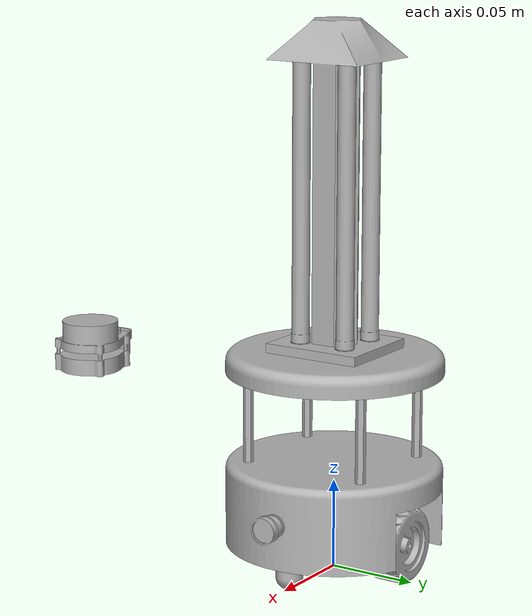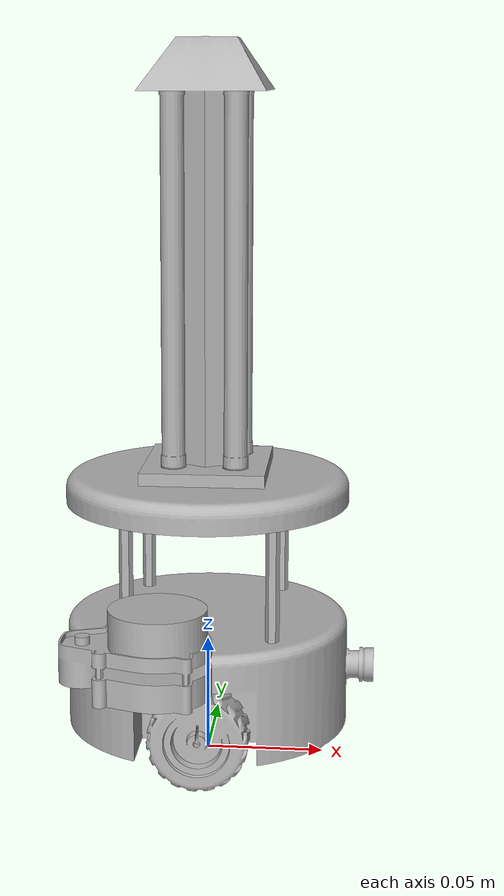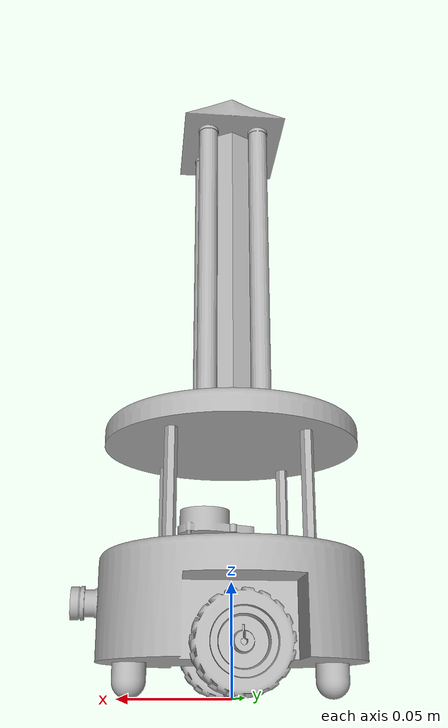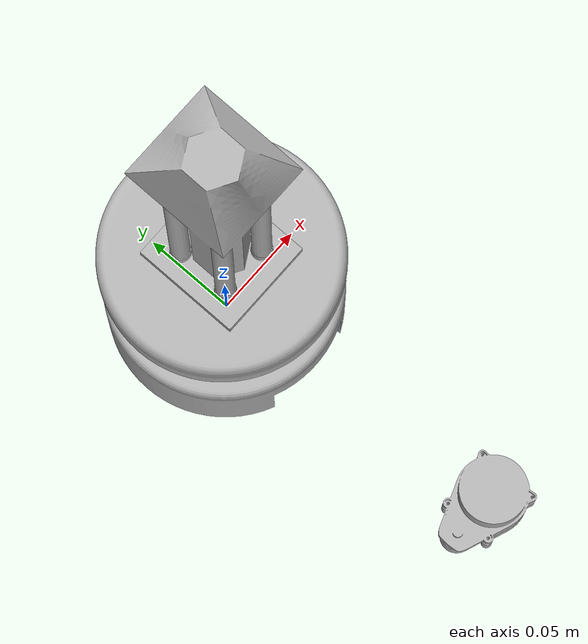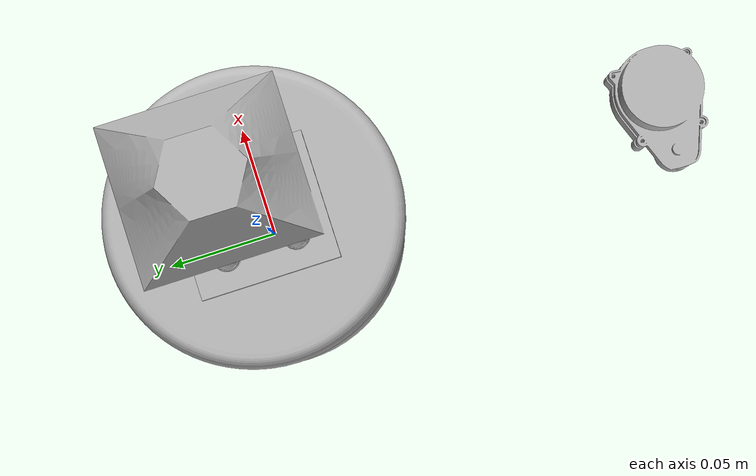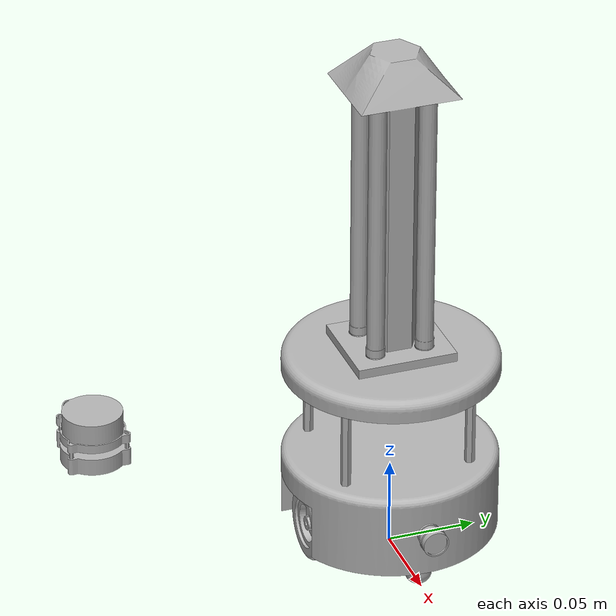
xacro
<?xml version="1.0" ?>
<robot name="robot_2" xmlns:xacro="http://www.ros.org/wiki/xacro">

<xacro:include filename="$(find robot_2_description)/urdf/materials.xacro" />
<xacro:include filename="$(find robot_2_description)/urdf/robot_2.trans" />
<xacro:include filename="$(find robot_2_description)/urdf/robot_2.gazebo" />
<link name="base_link">
  <inertial>
    <origin rpy="0 0 0" xyz="3.5816918795225934e-16 2.806643806252396e-15 0.03996501768187546"/>
    <mass value="0.5229463196400878"/>
    <inertia ixx="0.000449" ixy="0.0" ixz="-0.0" iyy="0.000644" iyz="0.0" izz="0.000894"/>
  </inertial>
  <visual>
    <origin rpy="0 0 0" xyz="0 0 0"/>
    <geometry>
      <mesh filename="package://robot_2_description/meshes/base_link.stl" scale="0.001 0.001 0.001"/>
    </geometry>
    <material name="silver"/>
  </visual>
  <collision>
    <origin rpy="0 0 0" xyz="0 0 0"/>
    <geometry>
      <mesh filename="package://robot_2_description/meshes/base_link.stl" scale="0.001 0.001 0.001"/>
    </geometry>
  </collision>
</link>

<link name="wheel1_1">
  <inertial>
    <origin rpy="0 0 0" xyz="1.3424177385424168e-09 -0.1663662605305044 -0.0010061415991715617"/>
    <mass value="0.135584559283875"/>
    <inertia ixx="2.1e-05" ixy="0.0" ixz="0.0" iyy="3.5e-05" iyz="-0.0" izz="2.1e-05"/>
  </inertial>
  <visual>
    <origin rpy="0 0 0" xyz="-0.0 -0.125 -0.022"/>
    <geometry>
      <mesh filename="package://robot_2_description/meshes/wheel1_1.stl" scale="0.001 0.001 0.001"/>
    </geometry>
    <material name="silver"/>
  </visual>
  <collision>
    <origin rpy="0 0 0" xyz="-0.0 -0.125 -0.022"/>
    <geometry>
      <mesh filename="package://robot_2_description/meshes/wheel1_1.stl" scale="0.001 0.001 0.001"/>
    </geometry>
  </collision>
</link>

<link name="wheel2_1">
  <inertial>
    <origin rpy="0 0 0" xyz="-4.338940176040751e-09 -0.17363375909041223 -0.0010061405085263903"/>
    <mass value="0.13558455928387872"/>
    <inertia ixx="2.1e-05" ixy="0.0" ixz="-0.0" iyy="3.5e-05" iyz="0.0" izz="2.1e-05"/>
  </inertial>
  <visual>
    <origin rpy="0 0 0" xyz="-0.0 -0.215 -0.022"/>
    <geometry>
      <mesh filename="package://robot_2_description/meshes/wheel2_1.stl" scale="0.001 0.001 0.001"/>
    </geometry>
    <material name="silver"/>
  </visual>
  <collision>
    <origin rpy="0 0 0" xyz="-0.0 -0.215 -0.022"/>
    <geometry>
      <mesh filename="package://robot_2_description/meshes/wheel2_1.stl" scale="0.001 0.001 0.001"/>
    </geometry>
  </collision>
</link>

<link name="LIDAR_1">
  <inertial>
    <origin rpy="0 0 0" xyz="-0.0041470497851640795 2.3270274596143282e-15 0.010100571111383835"/>
    <mass value="0.019437187157409802"/>
    <inertia ixx="2e-06" ixy="0.0" ixz="-1e-06" iyy="4e-06" iyz="0.0" izz="4e-06"/>
  </inertial>
  <visual>
    <origin rpy="0 0 0" xyz="-0.0 -0.0 -0.062"/>
    <geometry>
      <mesh filename="package://robot_2_description/meshes/LIDAR_1.stl" scale="0.001 0.001 0.001"/>
    </geometry>
    <material name="silver"/>
  </visual>
  <collision>
    <origin rpy="0 0 0" xyz="-0.0 -0.0 -0.062"/>
    <geometry>
      <mesh filename="package://robot_2_description/meshes/LIDAR_1.stl" scale="0.001 0.001 0.001"/>
    </geometry>
  </collision>
</link>

<link name="b_pill_3_1">
  <inertial>
    <origin rpy="0 0 0" xyz="0.030000000000000325 -0.20699999999999746 0.02399999999998806"/>
    <mass value="0.0084978742746349"/>
    <inertia ixx="2e-06" ixy="0.0" ixz="0.0" iyy="2e-06" iyz="-0.0" izz="0.0"/>
  </inertial>
  <visual>
    <origin rpy="0 0 0" xyz="-0.0 -0.17 -0.063"/>
    <geometry>
      <mesh filename="package://robot_2_description/meshes/b_pill_3_1.stl" scale="0.001 0.001 0.001"/>
    </geometry>
    <material name="silver"/>
  </visual>
  <collision>
    <origin rpy="0 0 0" xyz="-0.0 -0.17 -0.063"/>
    <geometry>
      <mesh filename="package://robot_2_description/meshes/b_pill_3_1.stl" scale="0.001 0.001 0.001"/>
    </geometry>
  </collision>
</link>

<link name="b_pill_4_1">
  <inertial>
    <origin rpy="0 0 0" xyz="-0.02999999999999966 -0.2069999999999975 0.023999999999987823"/>
    <mass value="0.0084978742746348"/>
    <inertia ixx="2e-06" ixy="-0.0" ixz="0.0" iyy="2e-06" iyz="-0.0" izz="0.0"/>
  </inertial>
  <visual>
    <origin rpy="0 0 0" xyz="-0.0 -0.17 -0.063"/>
    <geometry>
      <mesh filename="package://robot_2_description/meshes/b_pill_4_1.stl" scale="0.001 0.001 0.001"/>
    </geometry>
    <material name="silver"/>
  </visual>
  <collision>
    <origin rpy="0 0 0" xyz="-0.0 -0.17 -0.063"/>
    <geometry>
      <mesh filename="package://robot_2_description/meshes/b_pill_4_1.stl" scale="0.001 0.001 0.001"/>
    </geometry>
  </collision>
</link>

<link name="b_pill_2_1">
  <inertial>
    <origin rpy="0 0 0" xyz="-0.0299999999999996 -0.1349999999999973 0.023999999999987878"/>
    <mass value="0.008497874274634876"/>
    <inertia ixx="2e-06" ixy="0.0" ixz="0.0" iyy="2e-06" iyz="0.0" izz="0.0"/>
  </inertial>
  <visual>
    <origin rpy="0 0 0" xyz="-0.0 -0.17 -0.063"/>
    <geometry>
      <mesh filename="package://robot_2_description/meshes/b_pill_2_1.stl" scale="0.001 0.001 0.001"/>
    </geometry>
    <material name="silver"/>
  </visual>
  <collision>
    <origin rpy="0 0 0" xyz="-0.0 -0.17 -0.063"/>
    <geometry>
      <mesh filename="package://robot_2_description/meshes/b_pill_2_1.stl" scale="0.001 0.001 0.001"/>
    </geometry>
  </collision>
</link>

<link name="b_pill_1_1">
  <inertial>
    <origin rpy="0 0 0" xyz="0.030000000000000363 -0.13499999999999732 0.02399999999998781"/>
    <mass value="0.008497874274634809"/>
    <inertia ixx="2e-06" ixy="0.0" ixz="0.0" iyy="2e-06" iyz="0.0" izz="0.0"/>
  </inertial>
  <visual>
    <origin rpy="0 0 0" xyz="-0.0 -0.17 -0.063"/>
    <geometry>
      <mesh filename="package://robot_2_description/meshes/b_pill_1_1.stl" scale="0.001 0.001 0.001"/>
    </geometry>
    <material name="silver"/>
  </visual>
  <collision>
    <origin rpy="0 0 0" xyz="-0.0 -0.17 -0.063"/>
    <geometry>
      <mesh filename="package://robot_2_description/meshes/b_pill_1_1.stl" scale="0.001 0.001 0.001"/>
    </geometry>
  </collision>
</link>

<link name="lamp1_1">
  <inertial>
    <origin rpy="0 0 0" xyz="-1.0062974691374404e-08 1.3291860086715734e-07 0.0787499999999847"/>
    <mass value="0.0259798499932084"/>
    <inertia ixx="5.5e-05" ixy="0.0" ixz="-0.0" iyy="5.5e-05" iyz="0.0" izz="0.0"/>
  </inertial>
  <visual>
    <origin rpy="0 0 0" xyz="-0.012958 0.014121 -0.12925"/>
    <geometry>
      <mesh filename="package://robot_2_description/meshes/lamp1_1.stl" scale="0.001 0.001 0.001"/>
    </geometry>
    <material name="silver"/>
  </visual>
  <collision>
    <origin rpy="0 0 0" xyz="-0.012958 0.014121 -0.12925"/>
    <geometry>
      <mesh filename="package://robot_2_description/meshes/lamp1_1.stl" scale="0.001 0.001 0.001"/>
    </geometry>
  </collision>
</link>

<link name="lamp2_1">
  <inertial>
    <origin rpy="0 0 0" xyz="-1.006297849215354e-08 -1.3291858960706726e-07 0.07874999999998661"/>
    <mass value="0.02597984999320835"/>
    <inertia ixx="5.5e-05" ixy="0.0" ixz="-0.0" iyy="5.5e-05" iyz="-0.0" izz="0.0"/>
  </inertial>
  <visual>
    <origin rpy="0 0 0" xyz="-0.012958 -0.014121 -0.12925"/>
    <geometry>
      <mesh filename="package://robot_2_description/meshes/lamp2_1.stl" scale="0.001 0.001 0.001"/>
    </geometry>
    <material name="silver"/>
  </visual>
  <collision>
    <origin rpy="0 0 0" xyz="-0.012958 -0.014121 -0.12925"/>
    <geometry>
      <mesh filename="package://robot_2_description/meshes/lamp2_1.stl" scale="0.001 0.001 0.001"/>
    </geometry>
  </collision>
</link>

<link name="lamp3_1">
  <inertial>
    <origin rpy="0 0 0" xyz="1.0062992399431647e-08 1.3291856097025212e-07 0.07874999999998694"/>
    <mass value="0.025979849993208425"/>
    <inertia ixx="5.5e-05" ixy="0.0" ixz="-0.0" iyy="5.5e-05" iyz="0.0" izz="0.0"/>
  </inertial>
  <visual>
    <origin rpy="0 0 0" xyz="0.012958 0.014121 -0.12925"/>
    <geometry>
      <mesh filename="package://robot_2_description/meshes/lamp3_1.stl" scale="0.001 0.001 0.001"/>
    </geometry>
    <material name="silver"/>
  </visual>
  <collision>
    <origin rpy="0 0 0" xyz="0.012958 0.014121 -0.12925"/>
    <geometry>
      <mesh filename="package://robot_2_description/meshes/lamp3_1.stl" scale="0.001 0.001 0.001"/>
    </geometry>
  </collision>
</link>

<link name="lamp4_1">
  <inertial>
    <origin rpy="0 0 0" xyz="1.0063024193443515e-08 -1.329185752522305e-07 0.07874999999998822"/>
    <mass value="0.02597984999320818"/>
    <inertia ixx="5.5e-05" ixy="0.0" ixz="-0.0" iyy="5.5e-05" iyz="0.0" izz="0.0"/>
  </inertial>
  <visual>
    <origin rpy="0 0 0" xyz="0.012958 -0.014121 -0.12925"/>
    <geometry>
      <mesh filename="package://robot_2_description/meshes/lamp4_1.stl" scale="0.001 0.001 0.001"/>
    </geometry>
    <material name="silver"/>
  </visual>
  <collision>
    <origin rpy="0 0 0" xyz="0.012958 -0.014121 -0.12925"/>
    <geometry>
      <mesh filename="package://robot_2_description/meshes/lamp4_1.stl" scale="0.001 0.001 0.001"/>
    </geometry>
  </collision>
</link>

<link name="disk_top__1">
  <inertial>
    <origin rpy="0 0 0" xyz="0.025000000000000418 -0.20499999999999707 -0.1500804748457522"/>
    <mass value="0.15857278135894948"/>
    <inertia ixx="0.000142" ixy="0.0" ixz="0.0" iyy="0.000142" iyz="0.0" izz="0.000281"/>
  </inertial>
  <visual>
    <origin rpy="0 0 0" xyz="0.025 -0.205 -0.268"/>
    <geometry>
      <mesh filename="package://robot_2_description/meshes/disk_top__1.stl" scale="0.001 0.001 0.001"/>
    </geometry>
    <material name="silver"/>
  </visual>
  <collision>
    <origin rpy="0 0 0" xyz="0.025 -0.205 -0.268"/>
    <geometry>
      <mesh filename="package://robot_2_description/meshes/disk_top__1.stl" scale="0.001 0.001 0.001"/>
    </geometry>
  </collision>
</link>

<link name="top_struct_1">
  <inertial>
    <origin rpy="0 0 0" xyz="0.00018784276623245777 -6.746205231994651e-05 0.10535186097086743"/>
    <mass value="0.08818461557759205"/>
    <inertia ixx="0.000415" ixy="0.0" ixz="-0.0" iyy="0.000413" iyz="0.0" izz="2.5e-05"/>
  </inertial>
  <visual>
    <origin rpy="0 0 0" xyz="-0.0 -0.0 -0.124"/>
    <geometry>
      <mesh filename="package://robot_2_description/meshes/top_struct_1.stl" scale="0.001 0.001 0.001"/>
    </geometry>
    <material name="silver"/>
  </visual>
  <collision>
    <origin rpy="0 0 0" xyz="-0.0 -0.0 -0.124"/>
    <geometry>
      <mesh filename="package://robot_2_description/meshes/top_struct_1.stl" scale="0.001 0.001 0.001"/>
    </geometry>
  </collision>
</link>

<link name="Camera_1">
  <inertial>
    <origin rpy="0 0 0" xyz="0.06506608163852702 -0.19999999998975446 0.02400000001712703"/>
    <mass value="0.013116237909885132"/>
    <inertia ixx="0.0" ixy="0.0" ixz="-0.0" iyy="0.0" iyz="-0.0" izz="0.0"/>
  </inertial>
  <visual>
    <origin rpy="0 0 0" xyz="-0.0 -0.2 -0.016"/>
    <geometry>
      <mesh filename="package://robot_2_description/meshes/Camera_1.stl" scale="0.001 0.001 0.001"/>
    </geometry>
    <material name="silver"/>
  </visual>
  <collision>
    <origin rpy="0 0 0" xyz="-0.0 -0.2 -0.016"/>
    <geometry>
      <mesh filename="package://robot_2_description/meshes/Camera_1.stl" scale="0.001 0.001 0.001"/>
    </geometry>
  </collision>
</link>

<link name="Component6_1">
  <inertial>
    <origin rpy="0 0 0" xyz="0.04499999999952983 -0.16999999999999713 -0.0073750000000120264"/>
    <mass value="0.017340118826259073"/>
    <inertia ixx="0.0" ixy="0.0" ixz="0.0" iyy="0.0" iyz="0.0" izz="0.0"/>
  </inertial>
  <visual>
    <origin rpy="0 0 0" xyz="-0.0 -0.17 -0.016"/>
    <geometry>
      <mesh filename="package://robot_2_description/meshes/Component6_1.stl" scale="0.001 0.001 0.001"/>
    </geometry>
    <material name="silver"/>
  </visual>
  <collision>
    <origin rpy="0 0 0" xyz="-0.0 -0.17 -0.016"/>
    <geometry>
      <mesh filename="package://robot_2_description/meshes/Component6_1.stl" scale="0.001 0.001 0.001"/>
    </geometry>
  </collision>
</link>

<link name="Component16_1">
  <inertial>
    <origin rpy="0 0 0" xyz="-0.045000000000470136 -0.169999999999997 -0.00737500000001204"/>
    <mass value="0.017340118826259084"/>
    <inertia ixx="0.0" ixy="-0.0" ixz="0.0" iyy="0.0" iyz="0.0" izz="0.0"/>
  </inertial>
  <visual>
    <origin rpy="0 0 0" xyz="-0.0 -0.17 -0.016"/>
    <geometry>
      <mesh filename="package://robot_2_description/meshes/Component16_1.stl" scale="0.001 0.001 0.001"/>
    </geometry>
    <material name="silver"/>
  </visual>
  <collision>
    <origin rpy="0 0 0" xyz="-0.0 -0.17 -0.016"/>
    <geometry>
      <mesh filename="package://robot_2_description/meshes/Component16_1.stl" scale="0.001 0.001 0.001"/>
    </geometry>
  </collision>
</link>

<joint name="wheel_joint_1" type="continuous">
  <origin rpy="0 0 0" xyz="0.0 0.125 0.022"/>
  <parent link="base_link"/>
  <child link="wheel1_1"/>
  <axis xyz="-0.0 1.0 0.0"/>
</joint>

<joint name="wheel_joint_2" type="continuous">
  <origin rpy="0 0 0" xyz="0.0 0.215 0.022"/>
  <parent link="base_link"/>
  <child link="wheel2_1"/>
  <axis xyz="0.0 1.0 -0.0"/>
</joint>

<joint name="LIDAR_joint" type="fixed">
  <origin rpy="0 0 0" xyz="0.0 0.0 0.062"/>
  <parent link="base_link"/>
  <child link="LIDAR_1"/>
</joint>

<joint name="b_pill_joint_3" type="fixed">
  <origin rpy="0 0 0" xyz="0.0 0.17 0.063"/>
  <parent link="base_link"/>
  <child link="b_pill_3_1"/>
</joint>

<joint name="b_pill_joint_4" type="fixed">
  <origin rpy="0 0 0" xyz="0.0 0.17 0.063"/>
  <parent link="base_link"/>
  <child link="b_pill_4_1"/>
</joint>

<joint name="b_pill_joint_2" type="fixed">
  <origin rpy="0 0 0" xyz="0.0 0.17 0.063"/>
  <parent link="base_link"/>
  <child link="b_pill_2_1"/>
</joint>

<joint name="b_pill_joint_1" type="fixed">
  <origin rpy="0 0 0" xyz="0.0 0.17 0.063"/>
  <parent link="base_link"/>
  <child link="b_pill_1_1"/>
</joint>

<joint name="lamp_joint_1" type="fixed">
  <origin rpy="0 0 0" xyz="0.012958 -0.014121 0.00525"/>
  <parent link="top_struct_1"/>
  <child link="lamp1_1"/>
</joint>

<joint name="lamp_joint_2" type="fixed">
  <origin rpy="0 0 0" xyz="0.012958 0.014121 0.00525"/>
  <parent link="top_struct_1"/>
  <child link="lamp2_1"/>
</joint>

<joint name="lamp_joint_3" type="fixed">
  <origin rpy="0 0 0" xyz="-0.012958 -0.014121 0.00525"/>
  <parent link="top_struct_1"/>
  <child link="lamp3_1"/>
</joint>

<joint name="lamp_joint_4" type="fixed">
  <origin rpy="0 0 0" xyz="-0.012958 0.014121 0.00525"/>
  <parent link="top_struct_1"/>
  <child link="lamp4_1"/>
</joint>

<joint name="top_disk_pill_joint" type="fixed">
  <origin rpy="0 0 0" xyz="-0.025 0.035 0.205"/>
  <parent link="b_pill_2_1"/>
  <child link="disk_top__1"/>
</joint>

<joint name="top_struct_disk_joint" type="fixed">
  <origin rpy="0 0 0" xyz="0.025 -0.205 -0.144"/>
  <parent link="disk_top__1"/>
  <child link="top_struct_1"/>
</joint>

<joint name="camera joint" type="fixed">
  <origin rpy="0 0 0" xyz="0.0 0.2 0.016"/>
  <parent link="base_link"/>
  <child link="Camera_1"/>
</joint>

<joint name="caster_joint_1" type="fixed">
  <origin rpy="0 0 0" xyz="0.0 0.17 0.016"/>
  <parent link="base_link"/>
  <child link="Component6_1"/>
</joint>

<joint name="caster_joint_2" type="fixed">
  <origin rpy="0 0 0" xyz="0.0 0.17 0.016"/>
  <parent link="base_link"/>
  <child link="Component16_1"/>
</joint>

</robot>

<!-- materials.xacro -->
<robot name="final_robot" xmlns:xacro="http://www.ros.org/wiki/xacro" >

<material name="silver">
  <color rgba="0.700 0.700 0.700 1.000"/>
</material>

</robot>

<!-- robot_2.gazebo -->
<robot name="robot_2" xmlns:xacro="http://www.ros.org/wiki/xacro" >

<xacro:property name="body_color" value="Gazebo/Silver" />

<gazebo>
  <plugin filename="libgazebo_ros_control.so" name="control"/>
</gazebo>

<gazebo>
  <plugin name="differential_drive_controller" filename="libgazebo_ros_diff_drive.so">

    <!-- Plugin update rate in Hz -->
    <updateRate>10</updateRate>

    <!-- Name of left joint, defaults to `left_joint` -->
    <leftJoint>wheel_joint_1</leftJoint>

    <!-- Name of right joint, defaults to `right_joint` -->
    <rightJoint>wheel_joint_2</rightJoint>

    <!-- The distance from the center of one wheel to the other, in meters, defaults to 0.34 m -->
    <wheelSeparation>0.5380</wheelSeparation>

    <!-- Diameter of the wheels, in meters, defaults to 0.15 m -->
    <wheelDiameter>0.2410</wheelDiameter>

    <!-- Wheel acceleration, in rad/s^2, defaults to 0.0 rad/s^2 -->
    <wheelAcceleration>1.0</wheelAcceleration>

    <!-- Maximum torque which the wheels can produce, in Nm, defaults to 5 Nm -->
    <wheelTorque>20</wheelTorque>

    <!-- Topic to receive geometry_msgs/Twist message commands, defaults to `cmd_vel` -->
    <commandTopic>cmd_vel</commandTopic>

    <!-- Topic to publish nav_msgs/Odometry messages, defaults to `odom` -->
    <odometryTopic>odom</odometryTopic>

    <!-- Odometry frame, defaults to `odom` -->
    <odometryFrame>odom</odometryFrame>

    <!-- Robot frame to calculate odometry from, defaults to `base_footprint` -->
    <robotBaseFrame>base_link</robotBaseFrame>

    <!-- Odometry source, 0 for ENCODER, 1 for WORLD, defaults to WORLD -->
    <odometrySource>1</odometrySource>

    <!-- Set to true to publish transforms for the wheel links, defaults to false -->
    <publishWheelTF>true</publishWheelTF>

    <!-- Set to true to publish transforms for the odometry, defaults to true -->
    <publishOdom>true</publishOdom>

    <!-- Set to true to publish sensor_msgs/JointState on /joint_states for the wheel joints, defaults to false -->
    <publishWheelJointState>true</publishWheelJointState>

    <!-- Set to true to swap right and left wheels, defaults to true -->
    <legacyMode>false</legacyMode>
  </plugin>
</gazebo>

<gazebo reference="base_link">
  <material>${body_color}</material>
  <mu1>0.2</mu1>
  <mu2>0.2</mu2>
  <selfCollide>true</selfCollide>
  <gravity>true</gravity>
</gazebo>

<gazebo reference="wheel1_1">
  <material>${body_color}</material>
  <mu1>100</mu1>
  <mu2>100</mu2>
  <selfCollide>true</selfCollide>
</gazebo>

<gazebo reference="wheel2_1">
  <material>${body_color}</material>
  <mu1>100</mu1>
  <mu2>100</mu2>
  <selfCollide>true</selfCollide>
</gazebo>

<gazebo reference="LIDAR_1">
  <material>${body_color}</material>
  <mu1>0.2</mu1>
  <mu2>0.2</mu2>
  <selfCollide>true</selfCollide>
</gazebo>

<gazebo reference="b_pill_3_1">
  <material>${body_color}</material>
  <mu1>0.2</mu1>
  <mu2>0.2</mu2>
  <selfCollide>true</selfCollide>
</gazebo>

<gazebo reference="b_pill_4_1">
  <material>${body_color}</material>
  <mu1>0.2</mu1>
  <mu2>0.2</mu2>
  <selfCollide>true</selfCollide>
</gazebo>

<gazebo reference="b_pill_2_1">
  <material>${body_color}</material>
  <mu1>0.2</mu1>
  <mu2>0.2</mu2>
  <selfCollide>true</selfCollide>
</gazebo>

<gazebo reference="b_pill_1_1">
  <material>${body_color}</material>
  <mu1>0.2</mu1>
  <mu2>0.2</mu2>
  <selfCollide>true</selfCollide>
</gazebo>

<gazebo reference="lamp1_1">
  <material>${body_color}</material>
  <mu1>0.2</mu1>
  <mu2>0.2</mu2>
  <selfCollide>true</selfCollide>
</gazebo>

<gazebo reference="lamp2_1">
  <material>${body_color}</material>
  <mu1>0.2</mu1>
  <mu2>0.2</mu2>
  <selfCollide>true</selfCollide>
</gazebo>

<gazebo reference="lamp3_1">
  <material>${body_color}</material>
  <mu1>0.2</mu1>
  <mu2>0.2</mu2>
  <selfCollide>true</selfCollide>
</gazebo>

<gazebo reference="lamp4_1">
  <material>${body_color}</material>
  <mu1>0.2</mu1>
  <mu2>0.2</mu2>
  <selfCollide>true</selfCollide>
</gazebo>

<gazebo reference="disk_top__1">
  <material>${body_color}</material>
  <mu1>0.2</mu1>
  <mu2>0.2</mu2>
  <selfCollide>true</selfCollide>
</gazebo>

<gazebo reference="top_struct_1">
  <material>${body_color}</material>
  <mu1>0.2</mu1>
  <mu2>0.2</mu2>
  <selfCollide>true</selfCollide>
</gazebo>

<gazebo reference="Camera_1">
  <material>${body_color}</material>
  <mu1>0.2</mu1>
  <mu2>0.2</mu2>
  <selfCollide>true</selfCollide>
</gazebo>

<gazebo reference="Component6_1">
  <material>${body_color}</material>
  <mu1>0.2</mu1>
  <mu2>0.2</mu2>
  <selfCollide>true</selfCollide>
</gazebo>

<gazebo reference="Component16_1">
  <material>${body_color}</material>
  <mu1>0.2</mu1>
  <mu2>0.2</mu2>
  <selfCollide>true</selfCollide>
</gazebo>

</robot>
